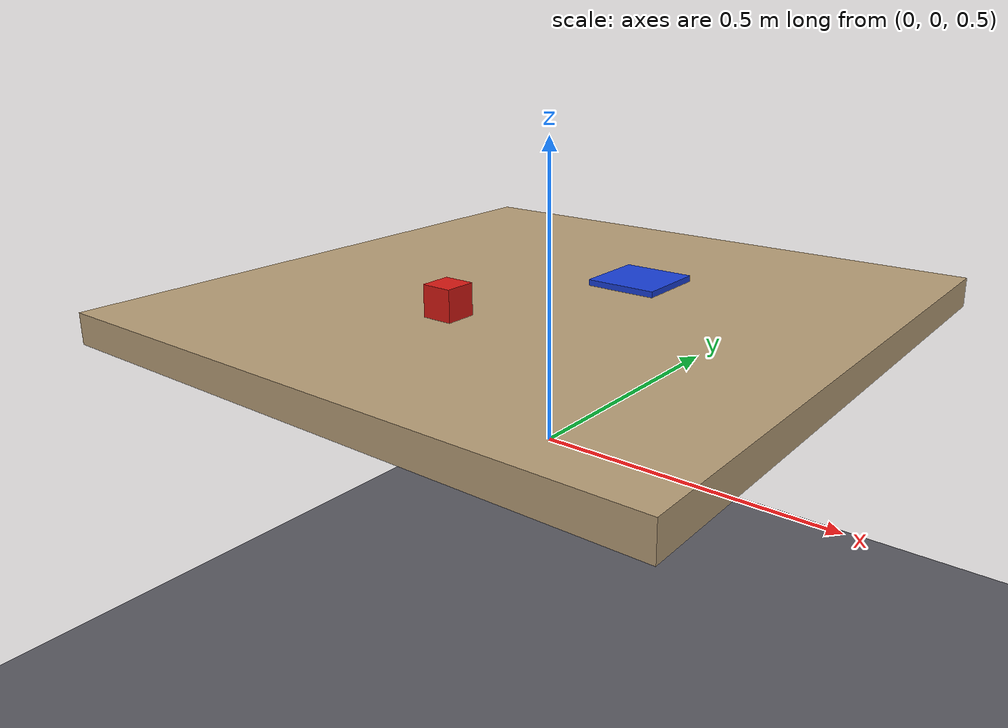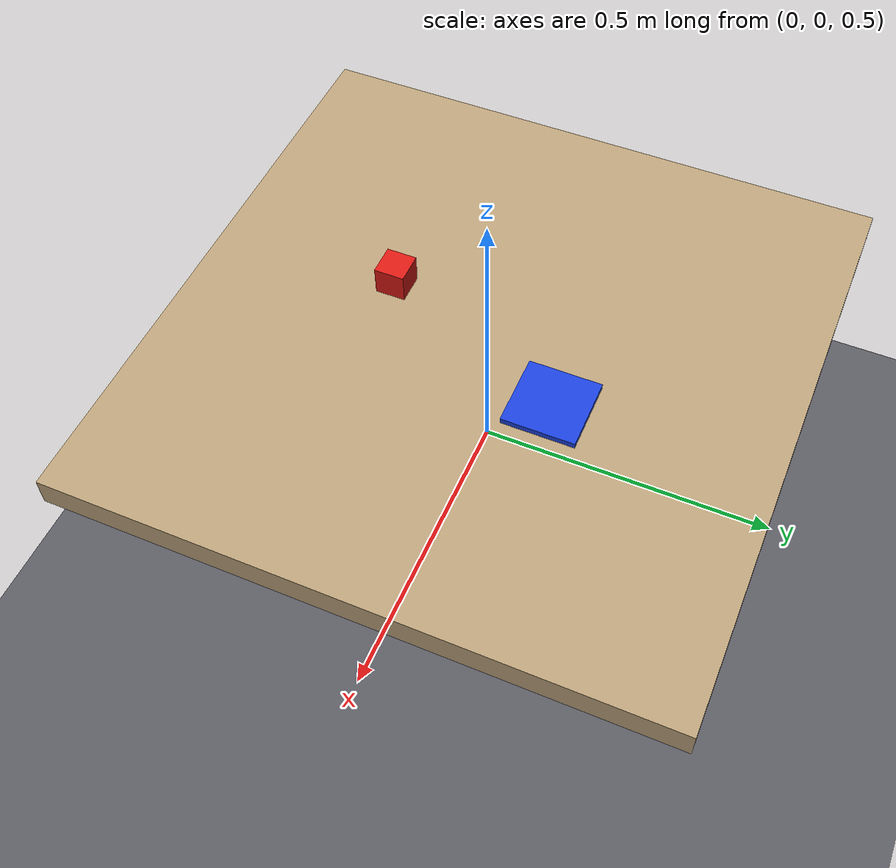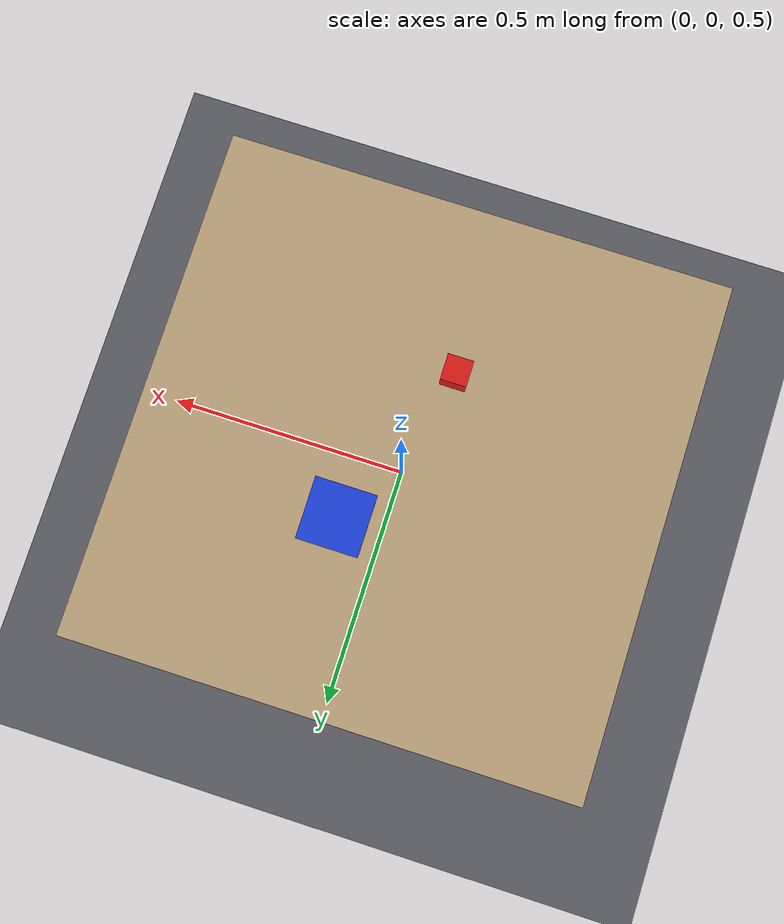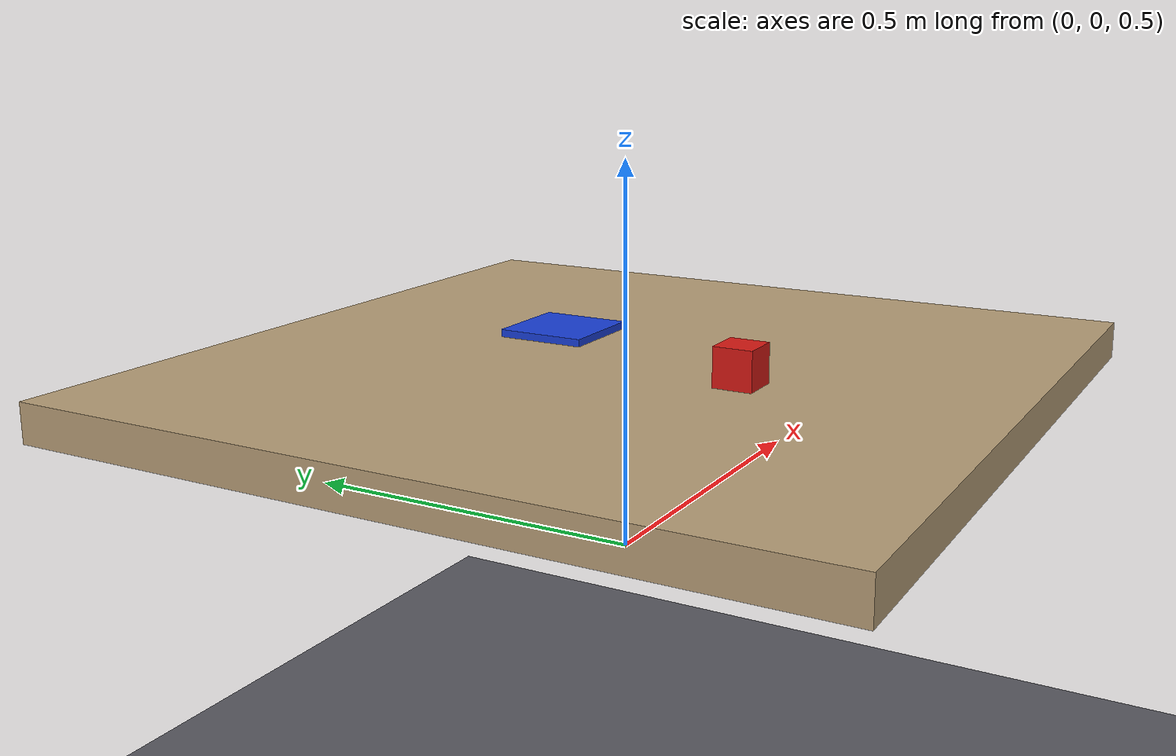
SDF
<?xml version="1.0" ?>
<sdf version="1.10">
  <world name="panda_tabletop">
    <physics name="default" type="ignored">
      <max_step_size>0.001</max_step_size>
      <real_time_factor>1.0</real_time_factor>
    </physics>

    <plugin filename="gz-sim-physics-system" name="gz::sim::systems::Physics"/>
    <plugin filename="gz-sim-user-commands-system" name="gz::sim::systems::UserCommands"/>
    <plugin filename="gz-sim-scene-broadcaster-system" name="gz::sim::systems::SceneBroadcaster"/>
    <plugin filename="gz-sim-sensors-system" name="gz::sim::systems::Sensors">
      <render_engine>ogre2</render_engine>
    </plugin>

    <light type="directional" name="sun">
      <cast_shadows>false</cast_shadows>
      <pose>0 0 4 0 0 0</pose>
      <diffuse>0.9 0.9 0.9 1</diffuse>
      <specular>0.2 0.2 0.2 1</specular>
      <direction>-0.3 0.2 -0.9</direction>
    </light>
    <!-- Second fill light so thresholded colors stay saturated in shadow. -->
    <light type="directional" name="fill">
      <cast_shadows>false</cast_shadows>
      <pose>0 0 4 0 0 0</pose>
      <diffuse>0.4 0.4 0.4 1</diffuse>
      <direction>0.4 -0.3 -0.8</direction>
    </light>

    <model name="ground">
      <static>true</static>
      <link name="link">
        <collision name="c"><geometry><plane><normal>0 0 1</normal></plane></geometry></collision>
        <visual name="v">
          <geometry><plane><normal>0 0 1</normal><size>10 10</size></plane></geometry>
          <material><ambient>0.35 0.35 0.38 1</ambient><diffuse>0.35 0.35 0.38 1</diffuse></material>
        </visual>
      </link>
    </model>

    <!-- Table: 1.0 x 1.0 m top at z = 0.75 -->
    <model name="table">
      <static>true</static>
      <pose>0 0 0.7250 0 0 0</pose>
      <link name="top">
        <collision name="c"><geometry><box><size>1.0 1.0 0.05</size></box></geometry></collision>
        <visual name="v">
          <geometry><box><size>1.0 1.0 0.05</size></box></geometry>
          <material><ambient>0.72 0.62 0.47 1</ambient><diffuse>0.72 0.62 0.47 1</diffuse></material>
        </visual>
      </link>
    </model>

    <!-- Target: red block, 5 cm cube resting on the table -->
    <model name="red_block">
      <pose>-0.05 -0.18 0.775 0 0 0</pose>
      <link name="link">
        <inertial><mass>0.05</mass>
          <inertia><ixx>2.1e-5</ixx><iyy>2.1e-5</iyy><izz>2.1e-5</izz>
                   <ixy>0</ixy><ixz>0</ixz><iyz>0</iyz></inertia>
        </inertial>
        <collision name="c"><geometry><box><size>0.05 0.05 0.05</size></box></geometry></collision>
        <visual name="v">
          <geometry><box><size>0.05 0.05 0.05</size></box></geometry>
          <material><ambient>0.85 0.10 0.08 1</ambient><diffuse>0.85 0.10 0.08 1</diffuse></material>
        </visual>
      </link>
    </model>

    <!-- Goal zone: blue pad, 12 x 12 cm, 1 cm thick -->
    <model name="blue_pad">
      <static>true</static>
      <pose>0.08 0.14 0.755 0 0 0</pose>
      <link name="link">
        <collision name="c"><geometry><box><size>0.12 0.12 0.01</size></box></geometry></collision>
        <visual name="v">
          <geometry><box><size>0.12 0.12 0.01</size></box></geometry>
          <material><ambient>0.10 0.25 0.85 1</ambient><diffuse>0.10 0.25 0.85 1</diffuse></material>
        </visual>
      </link>
    </model>

    <!-- Overhead camera, 1.15 m above the table top, looking straight down.
         Optical axis is +x in gz, so pitch by +90 deg. -->
    <model name="overhead_camera">
      <static>true</static>
      <!-- 3.4 m: high enough that the arm body (links at z 1.0-1.3) magnifies
           only ~1.15x vs the table plane instead of blotting out the scene -->
      <pose>0 0 3.4 0 1.5708 1.5708</pose>
      <link name="link">
        <sensor name="camera" type="camera">
          <topic>/camera/image_raw</topic>
          <update_rate>15</update_rate>
          <camera>
            <horizontal_fov>0.9</horizontal_fov>
            <image><width>512</width><height>512</height><format>R8G8B8</format></image>
            <clip><near>0.05</near><far>10</far></clip>
          </camera>
        </sensor>
      </link>
    </model>
  </world>
</sdf>
